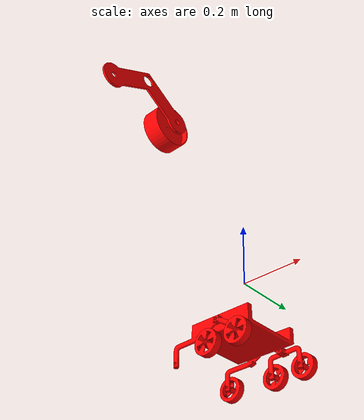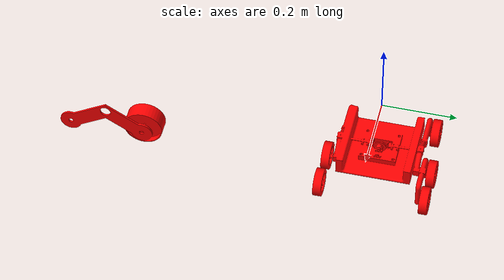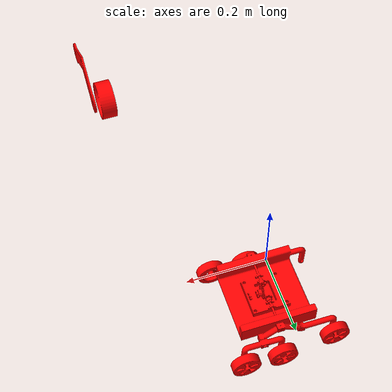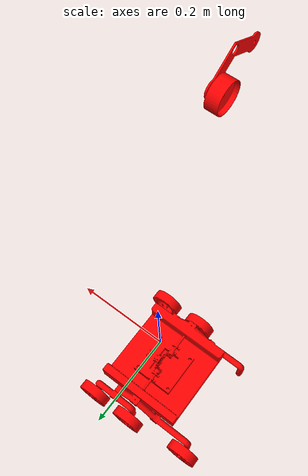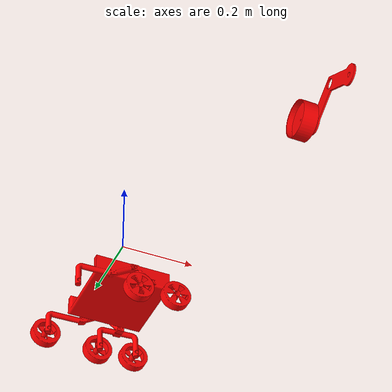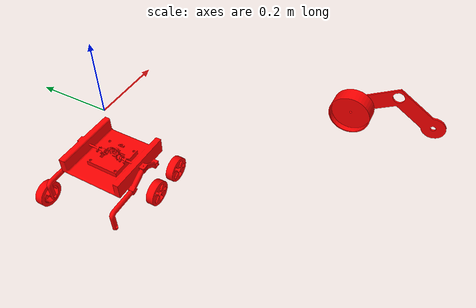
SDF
<?xml version="1.0" encoding="utf-8"?>
<sdf version="1.5">
  <model name="rocker bogie2_DRDO_SDF">
    <pose>0 0 -0.13869282230156 0 0 0</pose>
    <plugin name="clock" filename="libgz_clock.so">
      <topic>/gazebo/frc/time</topic>
    </plugin>
    <link name="chassis">
      <gravity>1</gravity>
      <self_collide>0</self_collide>
      <pose>-0.0140118069095409 9.23847384012855E-05 -0.0342752111820147 1.5707963267949 0 1.5707963267949</pose>
      <must_be_base_link>1</must_be_base_link>
      <velocity_decay>
        <linear>0</linear>
        <angular>0</angular>
      </velocity_decay>
      <inertial>
        <mass>7.23564922016932</mass>
        <pose>0 0 0 0 0 0</pose>
        <inertia>
          <ixx>0.0267731992504314</ixx>
          <ixy>1.1816733131961E-05</ixy>
          <ixz>6.51737973164661E-06</ixz>
          <iyy>0.0657594624268071</iyy>
          <iyz>0.00152478269391603</iyz>
          <izz>0.0425271351984544</izz>
        </inertia>
      </inertial>
      <collision name="chassis_collision">
        <pose>-0.251463812959426 0.139884688288293 0.487643391866537 0 0 0</pose>
        <geometry>
          <mesh>
            <scale>1 1 1</scale>
            <uri>model://rocker_bogie2_DRDO_SDF/meshes/chassis_col.STL</uri>
          </mesh>
        </geometry>
        <surface>
          <contact>
            <ode />
          </contact>
          <friction>
            <ode>
              <mu>0</mu>
              <mu2>0</mu2>
            </ode>
          </friction>
        </surface>
      </collision>
      <visual name="chassis_visual">
        <pose>-0.251463812959426 0.139884688288293 0.487643391866537 0 0 0</pose>
        <material>
          <ambient>1 0 0 1</ambient>
          <diffuse>1 0 0 1</diffuse>
        </material>
        <geometry>
          <mesh>
            <scale>1 1 1</scale>
            <uri>model://rocker_bogie2_DRDO_SDF/meshes/chassis.STL</uri>
          </mesh>
        </geometry>
      </visual>
    </link>
    <link name="bogie1">
      <gravity>1</gravity>
      <self_collide>0</self_collide>
      <pose>0.0409172398776575 -0.123907854058709 -0.0647888399637531 1.5707963267949 0 1.5707963267949</pose>
      <must_be_base_link>0</must_be_base_link>
      <velocity_decay>
        <linear>0</linear>
        <angular>0</angular>
      </velocity_decay>
      <inertial>
        <mass>0.285057110437176</mass>
        <pose>0 0 0 0 0 0</pose>
        <inertia>
          <ixx>0.000610157709332887</ixx>
          <ixy>2.59133264369864E-10</ixy>
          <ixz>4.18845558008104E-12</ixz>
          <iyy>0.000492155340392241</iyy>
          <iyz>8.78414871050554E-06</iyz>
          <izz>0.000126413081570753</izz>
        </inertia>
      </inertial>
      <collision name="bogie1_collision">
        <pose>-0.127463574162316 0.170398317070031 0.432714345079339 0 0 0</pose>
        <geometry>
          <mesh>
            <scale>1 1 1</scale>
            <uri>model://rocker_bogie2_DRDO_SDF/meshes/bogie1_col.STL</uri>
          </mesh>
        </geometry>
        <surface>
          <contact>
            <ode />
          </contact>
          <friction>
            <ode>
              <mu>0</mu>
              <mu2>0</mu2>
            </ode>
          </friction>
        </surface>
      </collision>
      <visual name="bogie1_visual">
        <pose>-0.127463574162316 0.170398317070031 0.432714345079339 0 0 0</pose>
        <material>
          <ambient>1 0 0 1</ambient>
          <diffuse>1 0 0 1</diffuse>
        </material>
        <geometry>
          <mesh>
            <scale>1 1 1</scale>
            <uri>model://rocker_bogie2_DRDO_SDF/meshes/bogie1.STL</uri>
          </mesh>
        </geometry>
      </visual>
    </link>
    <joint name="chassis-bogie1" type="revolute">
      <parent>chassis</parent>
      <child>bogie1</child>
      <pose>3.05311331771918E-16 0.0169527314428986 -0.0004069248737536 0 0 0</pose>
      <axis>
        <xyz>-1 3.17748218654955E-23 -8.72563921430534E-22</xyz>
        <dynamics>
          <damping>0</damping>
          <friction>0</friction>
        </dynamics>
        <limit>
          <upper>0</upper>
          <lower>0</lower>
          <effort>1</effort>
        </limit>
      </axis>
    </joint>
    <link name="wheel1">
      <gravity>1</gravity>
      <self_collide>0</self_collide>
      <pose>-0.155393720870805 -0.127216076578442 -0.105215080477974 1.5707963267949 0 1.5707963267949</pose>
      <must_be_base_link>0</must_be_base_link>
      <velocity_decay>
        <linear>0</linear>
        <angular>0</angular>
      </velocity_decay>
      <inertial>
        <mass>0.060861542237092</mass>
        <pose>0 0 0 0 0 0</pose>
        <inertia>
          <ixx>6.09504641301841E-05</ixx>
          <ixy>9.36432818375433E-12</ixy>
          <ixz>2.08425313969283E-11</ixz>
          <iyy>3.32741103980399E-05</iyy>
          <iyz>3.68044121642016E-11</iyz>
          <izz>3.32742912435572E-05</izz>
        </inertia>
      </inertial>
      <collision name="wheel1_collision">
        <pose>-0.124155351642582 0.210824557584252 0.629025305827801 0 0 0</pose>
        <geometry>
          <mesh>
            <scale>1 1 1</scale>
            <uri>model://rocker_bogie2_DRDO_SDF/meshes/wheel1_col.STL</uri>
          </mesh>
        </geometry>
        <surface>
          <contact>
            <ode />
          </contact>
          <friction>
            <ode>
              <mu>0</mu>
              <mu2>0</mu2>
            </ode>
          </friction>
        </surface>
      </collision>
      <visual name="wheel1_visual">
        <pose>-0.124155351642582 0.210824557584252 0.629025305827801 0 0 0</pose>
        <material>
          <ambient>1 0 0 1</ambient>
          <diffuse>1 0 0 1</diffuse>
        </material>
        <geometry>
          <mesh>
            <scale>1 1 1</scale>
            <uri>model://rocker_bogie2_DRDO_SDF/meshes/wheel1.STL</uri>
          </mesh>
        </geometry>
      </visual>
    </link>
    <joint name="chassis-wheel1" type="revolute">
      <parent>chassis</parent>
      <child>wheel1</child>
      <pose>-4.71844785465692E-16 4.91037790706361E-08 -1.82910182111584E-07 0 0 0</pose>
      <axis>
        <xyz>1 0 0</xyz>
        <dynamics>
          <damping>0</damping>
          <friction>0</friction>
        </dynamics>
        <limit>
          <upper>0</upper>
          <lower>0</lower>
          <effort>1</effort>
        </limit>
      </axis>
    </joint>
    <link name="wheel9">
      <gravity>1</gravity>
      <self_collide>0</self_collide>
      <pose>-0.155802712342858 0.127400491269964 -0.104513255842009 1.5707963267949 0 1.5707963267949</pose>
      <must_be_base_link>0</must_be_base_link>
      <velocity_decay>
        <linear>0</linear>
        <angular>0</angular>
      </velocity_decay>
      <inertial>
        <mass>0.0608615422370919</mass>
        <pose>0 0 0 0 0 0</pose>
        <inertia>
          <ixx>6.09504641301842E-05</ixx>
          <ixy>1.66338033085389E-11</ixy>
          <ixz>1.56658336396275E-11</ixz>
          <iyy>3.32741629781162E-05</iyy>
          <iyz>8.99931742889582E-11</iyz>
          <izz>3.32742386634809E-05</izz>
        </inertia>
      </inertial>
      <collision name="wheel9_collision">
        <pose>-0.378771919490989 0.210122732948287 0.629434297299854 0 0 0</pose>
        <geometry>
          <mesh>
            <scale>1 1 1</scale>
            <uri>model://rocker_bogie2_DRDO_SDF/meshes/wheel9_col.STL</uri>
          </mesh>
        </geometry>
        <surface>
          <contact>
            <ode />
          </contact>
          <friction>
            <ode>
              <mu>0</mu>
              <mu2>0</mu2>
            </ode>
          </friction>
        </surface>
      </collision>
      <visual name="wheel9_visual">
        <pose>-0.378771919490989 0.210122732948287 0.629434297299854 0 0 0</pose>
        <material>
          <ambient>1 0 0 1</ambient>
          <diffuse>1 0 0 1</diffuse>
        </material>
        <geometry>
          <mesh>
            <scale>1 1 1</scale>
            <uri>model://rocker_bogie2_DRDO_SDF/meshes/wheel9.STL</uri>
          </mesh>
        </geometry>
      </visual>
    </link>
    <joint name="chassis-wheel9" type="revolute">
      <parent>chassis</parent>
      <child>wheel9</child>
      <pose>1.66533453693773E-16 -1.15422100488427E-07 -1.50150106570379E-07 0 0 0</pose>
      <axis>
        <xyz>1 2.59222623785472E-32 -2.46519032881566E-32</xyz>
        <dynamics>
          <damping>0</damping>
          <friction>0</friction>
        </dynamics>
        <limit>
          <upper>0</upper>
          <lower>0</lower>
          <effort>1</effort>
        </limit>
      </axis>
    </joint>
    <link name="bogie2">
      <gravity>1</gravity>
      <self_collide>0</self_collide>
      <pose>0.041231566226005 0.124092145986714 -0.0650006140522282 1.5707963267949 0 1.5707963267949</pose>
      <must_be_base_link>0</must_be_base_link>
      <velocity_decay>
        <linear>0</linear>
        <angular>0</angular>
      </velocity_decay>
      <inertial>
        <mass>0.285057103363605</mass>
        <pose>0 0 0 0 0 0</pose>
        <inertia>
          <ixx>0.000610157695027885</ixx>
          <ixy>2.59610103879707E-10</ixy>
          <ixz>9.06369839243088E-12</ixz>
          <iyy>0.000491424184306855</iyy>
          <iyz>1.85482244309763E-05</iyz>
          <izz>0.000127144223081822</izz>
        </inertia>
      </inertial>
      <collision name="bogie2_collision">
        <pose>-0.375463574207739 0.170610091158506 0.432400018730991 0 0 0</pose>
        <geometry>
          <mesh>
            <scale>1 1 1</scale>
            <uri>model://rocker_bogie2_DRDO_SDF/meshes/bogie2_col.STL</uri>
          </mesh>
        </geometry>
        <surface>
          <contact>
            <ode />
          </contact>
          <friction>
            <ode>
              <mu>0</mu>
              <mu2>0</mu2>
            </ode>
          </friction>
        </surface>
      </collision>
      <visual name="bogie2_visual">
        <pose>-0.375463574207739 0.170610091158506 0.432400018730991 0 0 0</pose>
        <material>
          <ambient>1 0 0 1</ambient>
          <diffuse>1 0 0 1</diffuse>
        </material>
        <geometry>
          <mesh>
            <scale>1 1 1</scale>
            <uri>model://rocker_bogie2_DRDO_SDF/meshes/bogie2.STL</uri>
          </mesh>
        </geometry>
      </visual>
    </link>
    <joint name="chassis-bogie2" type="revolute">
      <parent>chassis</parent>
      <child>bogie2</child>
      <pose>3.33066907387547E-16 -0.032960598145846 0.0517383813311545 0 0 0</pose>
      <axis>
        <xyz>-1 -8.90326398945524E-16 -1.9400237768314E-16</xyz>
        <dynamics>
          <damping>0</damping>
          <friction>0</friction>
        </dynamics>
        <limit>
          <upper>0</upper>
          <lower>0</lower>
          <effort>1</effort>
        </limit>
      </axis>
    </joint>
    <link name="wheel3">
      <gravity>1</gravity>
      <self_collide>0</self_collide>
      <pose>-0.00821530311568947 -0.143216076578442 -0.101520724455714 1.5707963267949 0 1.5707963267949</pose>
      <must_be_base_link>0</must_be_base_link>
      <velocity_decay>
        <linear>0</linear>
        <angular>0</angular>
      </velocity_decay>
      <inertial>
        <mass>0.0608615422370921</mass>
        <pose>0 0 0 0 0 0</pose>
        <inertia>
          <ixx>6.09504641301842E-05</ixx>
          <ixy>8.12714224724989E-12</ixy>
          <ixz>2.13553580054377E-11</ixz>
          <iyy>3.32741641080833E-05</iyy>
          <iyz>9.04600274085331E-11</iyz>
          <izz>3.3274237533514E-05</izz>
        </inertia>
      </inertial>
      <collision name="wheel3_collision">
        <pose>-0.108155351642582 0.207130201561992 0.481846888072686 0 0 0</pose>
        <geometry>
          <mesh>
            <scale>1 1 1</scale>
            <uri>model://rocker_bogie2_DRDO_SDF/meshes/wheel3_col.STL</uri>
          </mesh>
        </geometry>
        <surface>
          <contact>
            <ode />
          </contact>
          <friction>
            <ode>
              <mu>0</mu>
              <mu2>0</mu2>
            </ode>
          </friction>
        </surface>
      </collision>
      <visual name="wheel3_visual">
        <pose>-0.108155351642582 0.207130201561992 0.481846888072686 0 0 0</pose>
        <material>
          <ambient>1 0 0 1</ambient>
          <diffuse>1 0 0 1</diffuse>
        </material>
        <geometry>
          <mesh>
            <scale>1 1 1</scale>
            <uri>model://rocker_bogie2_DRDO_SDF/meshes/wheel3.STL</uri>
          </mesh>
        </geometry>
      </visual>
    </link>
    <joint name="bogie1-wheel3" type="revolute">
      <parent>bogie1</parent>
      <child>wheel3</child>
      <pose>0 -9.46985707350745E-08 -1.6401065977556E-07 0 0 0</pose>
      <axis>
        <xyz>1 2.59222623785472E-32 -2.46519032881566E-32</xyz>
        <dynamics>
          <damping>0</damping>
          <friction>0</friction>
        </dynamics>
        <limit>
          <upper>0</upper>
          <lower>0</lower>
          <effort>1</effort>
        </limit>
      </axis>
    </joint>
    <link name="wheel6">
      <gravity>1</gravity>
      <self_collide>0</self_collide>
      <pose>0.09175590097026 -0.143216076578442 -0.0991210674791009 1.5707963267949 0 1.5707963267949</pose>
      <must_be_base_link>0</must_be_base_link>
      <velocity_decay>
        <linear>0</linear>
        <angular>0</angular>
      </velocity_decay>
      <inertial>
        <mass>0.0608615422370919</mass>
        <pose>0 0 0 0 0 0</pose>
        <inertia>
          <ixx>6.09504641301841E-05</ixx>
          <ixy>8.12714225663206E-12</ixy>
          <ixz>2.13553580075757E-11</ixz>
          <iyy>3.32741641080832E-05</iyy>
          <iyz>9.04600273820191E-11</iyz>
          <izz>3.32742375335139E-05</izz>
        </inertia>
      </inertial>
      <collision name="wheel6_collision">
        <pose>-0.108155351642582 0.204730544585379 0.381875683986736 0 0 0</pose>
        <geometry>
          <mesh>
            <scale>1 1 1</scale>
            <uri>model://rocker_bogie2_DRDO_SDF/meshes/wheel6_col.STL</uri>
          </mesh>
        </geometry>
        <surface>
          <contact>
            <ode />
          </contact>
          <friction>
            <ode>
              <mu>0</mu>
              <mu2>0</mu2>
            </ode>
          </friction>
        </surface>
      </collision>
      <visual name="wheel6_visual">
        <pose>-0.108155351642582 0.204730544585379 0.381875683986736 0 0 0</pose>
        <material>
          <ambient>1 0 0 1</ambient>
          <diffuse>1 0 0 1</diffuse>
        </material>
        <geometry>
          <mesh>
            <scale>1 1 1</scale>
            <uri>model://rocker_bogie2_DRDO_SDF/meshes/wheel6.STL</uri>
          </mesh>
        </geometry>
      </visual>
    </link>
    <joint name="bogie1-wheel6" type="revolute">
      <parent>bogie1</parent>
      <child>wheel6</child>
      <pose>-4.30211422042248E-16 -9.46985708738524E-08 -1.6401065977556E-07 0 0 0</pose>
      <axis>
        <xyz>1 2.59222623785472E-32 -2.46519032881566E-32</xyz>
        <dynamics>
          <damping>0</damping>
          <friction>0</friction>
        </dynamics>
        <limit>
          <upper>0</upper>
          <lower>0</lower>
          <effort>1</effort>
        </limit>
      </axis>
    </joint>
    <link name="wheel7">
      <gravity>1</gravity>
      <self_collide>0</self_collide>
      <pose>-0.00690127433442722 0.143400491269964 -0.103033470231298 1.5707963267949 0 1.5707963267949</pose>
      <must_be_base_link>0</must_be_base_link>
      <velocity_decay>
        <linear>0</linear>
        <angular>0</angular>
      </velocity_decay>
      <inertial>
        <mass>0.0608615422370922</mass>
        <pose>0 0 0 0 0 0</pose>
        <inertia>
          <ixx>6.09504641301843E-05</ixx>
          <ixy>1.99204164095533E-11</ixy>
          <ixz>1.11927997869173E-11</ixz>
          <iyy>3.32742832299952E-05</iyy>
          <iyz>5.23408477721838E-11</iyz>
          <izz>3.32741184116021E-05</izz>
        </inertia>
      </inertial>
      <collision name="wheel7_collision">
        <pose>-0.394771919490989 0.208642947337576 0.480532859291423 0 0 0</pose>
        <geometry>
          <mesh>
            <scale>1 1 1</scale>
            <uri>model://rocker_bogie2_DRDO_SDF/meshes/wheel7_col.STL</uri>
          </mesh>
        </geometry>
        <surface>
          <contact>
            <ode />
          </contact>
          <friction>
            <ode>
              <mu>0</mu>
              <mu2>0</mu2>
            </ode>
          </friction>
        </surface>
      </collision>
      <visual name="wheel7_visual">
        <pose>-0.394771919490989 0.208642947337576 0.480532859291423 0 0 0</pose>
        <material>
          <ambient>1 0 0 1</ambient>
          <diffuse>1 0 0 1</diffuse>
        </material>
        <geometry>
          <mesh>
            <scale>1 1 1</scale>
            <uri>model://rocker_bogie2_DRDO_SDF/meshes/wheel7.STL</uri>
          </mesh>
        </geometry>
      </visual>
    </link>
    <joint name="bogie2-wheel7" type="revolute">
      <parent>bogie2</parent>
      <child>wheel7</child>
      <pose>2.77555756156289E-16 1.77779226617769E-07 -6.52829411085243E-08 0 3.67724559638775E-18 4.57213918705024</pose>
      <axis>
        <xyz>-0.139790459643666 0.990181108379983 -4.19128944852944E-18</xyz>
        <dynamics>
          <damping>0</damping>
          <friction>0</friction>
        </dynamics>
        <limit>
          <upper>0</upper>
          <lower>0</lower>
          <effort>1</effort>
        </limit>
      </axis>
    </joint>
    <link name="wheel8">
      <gravity>1</gravity>
      <self_collide>0</self_collide>
      <pose>0.0929700725395733 0.143400491269964 -0.0979610699071326 1.5707963267949 0 1.5707963267949</pose>
      <must_be_base_link>0</must_be_base_link>
      <velocity_decay>
        <linear>0</linear>
        <angular>0</angular>
      </velocity_decay>
      <inertial>
        <mass>0.0608615422370917</mass>
        <pose>0 0 0 0 0 0</pose>
        <inertia>
          <ixx>6.09504641301841E-05</ixx>
          <ixy>1.93504023673876E-11</ixy>
          <ixz>1.2151694685492E-11</ixz>
          <iyy>3.32741999752059E-05</iyy>
          <iyz>9.76223590606315E-11</iyz>
          <izz>3.32742016663912E-05</izz>
        </inertia>
      </inertial>
      <collision name="wheel8_collision">
        <pose>-0.394771919490989 0.203570547013411 0.380661512417423 0 0 0</pose>
        <geometry>
          <mesh>
            <scale>1 1 1</scale>
            <uri>model://rocker_bogie2_DRDO_SDF/meshes/wheel8_col.STL</uri>
          </mesh>
        </geometry>
        <surface>
          <contact>
            <ode />
          </contact>
          <friction>
            <ode>
              <mu>0</mu>
              <mu2>0</mu2>
            </ode>
          </friction>
        </surface>
      </collision>
      <visual name="wheel8_visual">
        <pose>-0.394771919490989 0.203570547013411 0.380661512417423 0 0 0</pose>
        <material>
          <ambient>1 0 0 1</ambient>
          <diffuse>1 0 0 1</diffuse>
        </material>
        <geometry>
          <mesh>
            <scale>1 1 1</scale>
            <uri>model://rocker_bogie2_DRDO_SDF/meshes/wheel8.STL</uri>
          </mesh>
        </geometry>
      </visual>
    </link>
    <joint name="bogie2-wheel8" type="revolute">
      <parent>bogie2</parent>
      <child>wheel8</child>
      <pose>2.22044604925031E-16 -1.42290941695933E-07 -1.24982413751695E-07 0 0 0</pose>
      <axis>
        <xyz>1 8.90326398945524E-16 1.9400237768314E-16</xyz>
        <dynamics>
          <damping>0</damping>
          <friction>0</friction>
        </dynamics>
        <limit>
          <upper>0</upper>
          <lower>0</lower>
          <effort>1</effort>
        </limit>
      </axis>
    </joint>
  </model>
</sdf>
